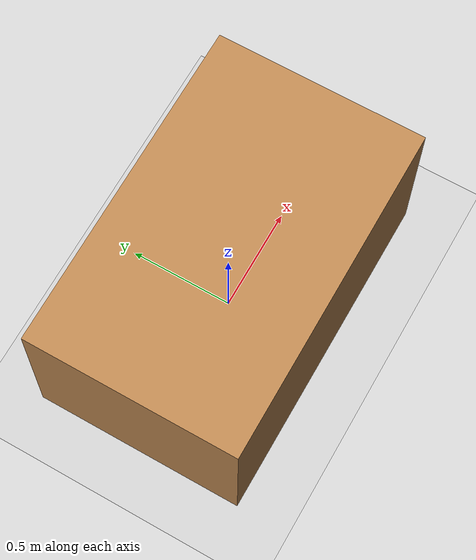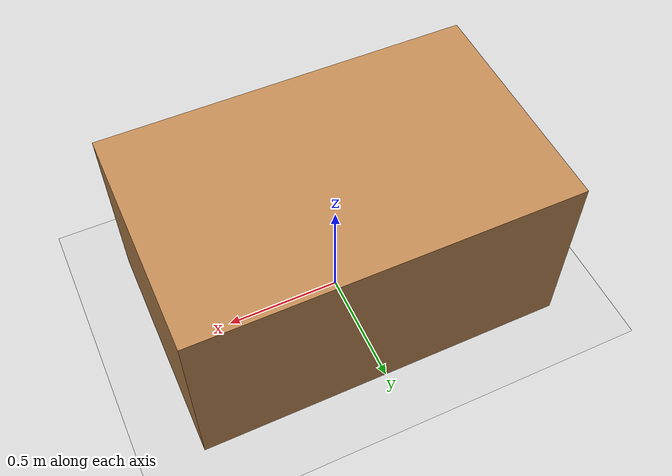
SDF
<?xml version="1.0" ?>
<sdf version="1.6">
  <world name="cliff_test">
    <include>
      <uri>model://sun</uri>
    </include>

    <include>
      <uri>model://ground_plane</uri>
    </include>

    <model name="test_table">
      <static>true</static>
      <pose>0 0 0.4 0 0 0</pose>
      <link name="table_link">
        <collision name="collision">
          <geometry>
            <box>
              <size>1.6 1.0 0.8</size>
            </box>
          </geometry>
        </collision>
        <visual name="visual">
          <geometry>
            <box>
              <size>1.6 1.0 0.8</size>
            </box>
          </geometry>
          <material>
            <ambient>0.74 0.53 0.32 1</ambient>
            <diffuse>0.74 0.53 0.32 1</diffuse>
            <specular>0.1 0.1 0.1 1</specular>
          </material>
        </visual>
      </link>
    </model>
  </world>
</sdf>
